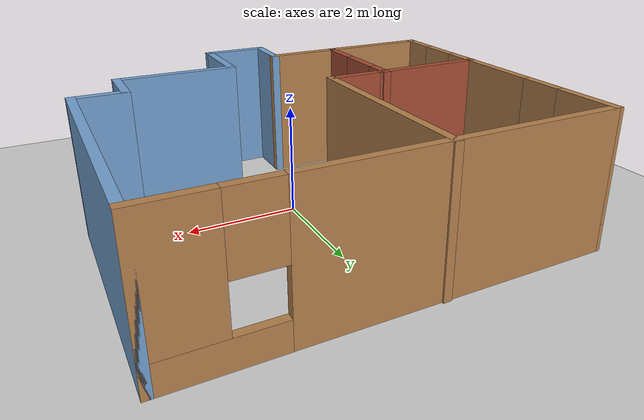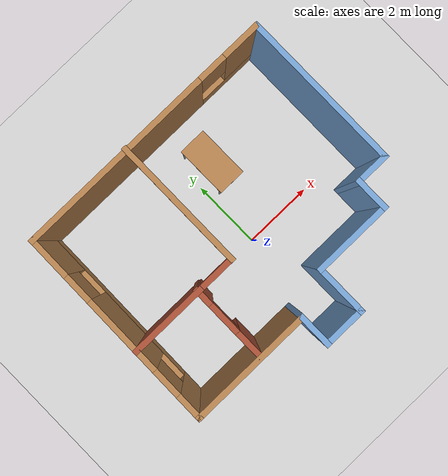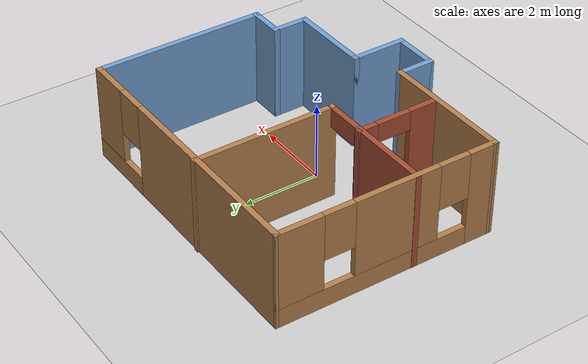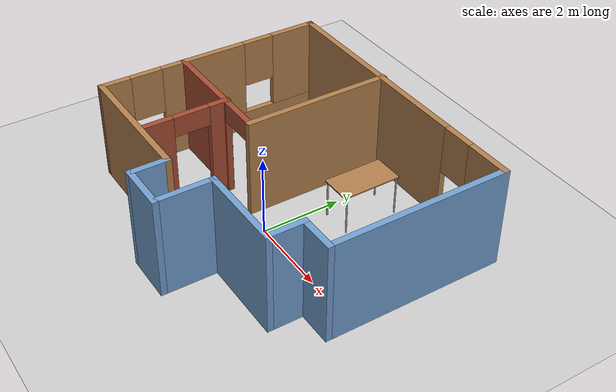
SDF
<sdf version="1.6">
 <world name="default">
  <light name="sun" type="directional">
   <pose>0 0 10 0 -0 0</pose>
   <diffuse>0.8 0.8 0.8 1</diffuse>
   <specular>0.2 0.2 0.2 1</specular>
   <attenuation>
    <range>1000</range>
    <constant>0.9</constant>
    <linear>0.01</linear>
    <quadratic>0.001</quadratic>
   </attenuation>
   <direction>-0.5 0.1 -0.9</direction>
  </light>
  <model name="ground_plane">
   <static>1</static>
   <link name="link">
    <collision name="collision">
     <geometry><plane><normal>0 0 1</normal><size>100 100</size></plane></geometry>
     <surface><friction><ode><mu>100</mu><mu2>50</mu2></ode></friction></surface>
    </collision>
    <visual name="visual">
     <cast_shadows>0</cast_shadows>
     <geometry><plane><normal>0 0 1</normal><size>100 100</size></plane></geometry>
     <material>
      <script><uri>file://media/materials/scripts/gazebo.material</uri><name>Gazebo/Grey</name></script>
     </material>
    </visual>
   </link>
  </model>
  <gravity>0 0 -9.8</gravity>
  <magnetic_field>6e-06 2.3e-05 -4.2e-05</magnetic_field>
  <atmosphere type="adiabatic"/>
  <physics name="default_physics" default="0" type="ode">
   <max_step_size>0.001</max_step_size>
   <real_time_factor>1</real_time_factor>
   <real_time_update_rate>1000</real_time_update_rate>
  </physics>
  <scene><ambient>0.4 0.4 0.4 1</ambient><background>0.7 0.7 0.7 1</background><shadows>1</shadows></scene>
  <audio><device>default</device></audio>
  <spherical_coordinates>
   <surface_model>EARTH_WGS84</surface_model>
   <latitude_deg>0</latitude_deg>
   <longitude_deg>0</longitude_deg>
   <elevation>0</elevation>
   <heading_deg>0</heading_deg>
  </spherical_coordinates>
  <model name="dice_apt">
   <pose>-0.179463 0.445694 0 0 -0 0</pose>
   <link name="Wall_0">
    <pose>0.025327 3.25899 0 0 -0 0</pose>
    <visual name="Wall_0_Visual_0">
     <pose>-0.970949 0 1.25 0 -0 0</pose>
     <geometry><box><size>5.5581 0.15 2.5</size></box></geometry>
     <material>
      <script><uri>file://media/materials/scripts/gazebo.material</uri><name>Gazebo/Wood</name></script>
      <ambient>1 1 1 1</ambient>
     </material>
     <meta><layer>0</layer></meta>
    </visual>
    <collision name="Wall_0_Collision_0">
     <geometry><box><size>5.5581 0.15 2.5</size></box></geometry>
     <pose>-0.970949 0 1.25 0 -0 0</pose>
    </collision>
    <visual name="Wall_0_Visual_1">
     <pose>2.77905 0 0.25 0 -0 0</pose>
     <geometry><box><size>1.9419 0.15 0.5</size></box></geometry>
     <material>
      <script><uri>file://media/materials/scripts/gazebo.material</uri><name>Gazebo/Wood</name></script>
      <ambient>1 1 1 1</ambient>
     </material>
     <meta><layer>0</layer></meta>
    </visual>
    <collision name="Wall_0_Collision_1">
     <geometry><box><size>1.9419 0.15 0.5</size></box></geometry>
     <pose>2.77905 0 0.25 0 -0 0</pose>
    </collision>
    <visual name="Wall_0_Visual_2">
     <pose>3.17905 0 1.5 0 -0 0</pose>
     <geometry><box><size>1.1419 0.15 2</size></box></geometry>
     <material>
      <script><uri>file://media/materials/scripts/gazebo.material</uri><name>Gazebo/Wood</name></script>
      <ambient>1 1 1 1</ambient>
     </material>
     <meta><layer>0</layer></meta>
    </visual>
    <collision name="Wall_0_Collision_2">
     <geometry><box><size>1.1419 0.15 2</size></box></geometry>
     <pose>3.17905 0 1.5 0 -0 0</pose>
    </collision>
    <visual name="Wall_0_Visual_3">
     <pose>2.2081 0 1.9 0 -0 0</pose>
     <geometry><box><size>0.8 0.15 1.2</size></box></geometry>
     <material>
      <script><uri>file://media/materials/scripts/gazebo.material</uri><name>Gazebo/Wood</name></script>
      <ambient>1 1 1 1</ambient>
     </material>
     <meta><layer>0</layer></meta>
    </visual>
    <collision name="Wall_0_Collision_3">
     <geometry><box><size>0.8 0.15 1.2</size></box></geometry>
     <pose>2.2081 0 1.9 0 -0 0</pose>
    </collision>
   </link>
   <link name="Wall_1">
    <collision name="Wall_1_Collision">
     <geometry><box><size>4.5 0.15 2.5</size></box></geometry>
     <pose>0 0 1.25 0 -0 0</pose>
    </collision>
    <visual name="Wall_1_Visual">
     <pose>0 0 1.25 0 -0 0</pose>
     <geometry><box><size>4.5 0.15 2.5</size></box></geometry>
     <material>
      <script><uri>file://media/materials/scripts/gazebo.material</uri><name>Gazebo/Grey</name></script>
      <ambient>0.447059 0.623529 0.811765 1</ambient>
     </material>
     <meta><layer>0</layer></meta>
    </visual>
    <pose>3.70033 1.08399 0 0 -0 -1.5708</pose>
   </link>
   <link name="Wall_10">
    <collision name="Wall_10_Collision">
     <geometry><box><size>1 0.15 2.5</size></box></geometry>
     <pose>0 0 1.25 0 -0 0</pose>
    </collision>
    <visual name="Wall_10_Visual">
     <pose>0 0 1.25 0 -0 0</pose>
     <geometry><box><size>1 0.15 2.5</size></box></geometry>
     <material>
      <script><uri>file://media/materials/scripts/gazebo.material</uri><name>Gazebo/Grey</name></script>
      <ambient>0.447059 0.623529 0.811765 1</ambient>
     </material>
     <meta><layer>0</layer></meta>
    </visual>
    <pose>-0.349673 -2.86601 0 0 -0 1.5708</pose>
   </link>
   <link name="Wall_11">
    <collision name="Wall_11_Collision">
     <geometry><box><size>3.5 0.15 2.5</size></box></geometry>
     <pose>0 0 1.25 0 -0 0</pose>
    </collision>
    <visual name="Wall_11_Visual">
     <pose>0 0 1.25 0 -0 0</pose>
     <geometry><box><size>3.5 0.15 2.5</size></box></geometry>
     <material>
      <script><uri>file://media/materials/scripts/gazebo.material</uri><name>Gazebo/Wood</name></script>
      <ambient>1 1 1 1</ambient>
     </material>
     <meta><layer>0</layer></meta>
    </visual>
    <pose>-2.02467 -2.44101 0 0 -0 3.14159</pose>
   </link>
   <link name="Wall_12">
    <pose>-3.67467 0.408986 0 0 -0 1.56202</pose>
    <visual name="Wall_12_Visual_0">
     <pose>-2.53263 0 1.25 0 -0 0</pose>
     <geometry><box><size>0.784956 0.15 2.5</size></box></geometry>
     <material>
      <script><uri>file://media/materials/scripts/gazebo.material</uri><name>Gazebo/Wood</name></script>
      <ambient>1 1 1 1</ambient>
     </material>
     <meta><layer>0</layer></meta>
    </visual>
    <collision name="Wall_12_Collision_0">
     <geometry><box><size>0.784956 0.15 2.5</size></box></geometry>
     <pose>-2.53263 0 1.25 0 -0 0</pose>
    </collision>
    <visual name="Wall_12_Visual_1">
     <pose>0.392478 0 0.25 0 -0 0</pose>
     <geometry><box><size>5.06526 0.15 0.5</size></box></geometry>
     <material>
      <script><uri>file://media/materials/scripts/gazebo.material</uri><name>Gazebo/Wood</name></script>
      <ambient>1 1 1 1</ambient>
     </material>
     <meta><layer>0</layer></meta>
    </visual>
    <collision name="Wall_12_Collision_1">
     <geometry><box><size>5.06526 0.15 0.5</size></box></geometry>
     <pose>0.392478 0 0.25 0 -0 0</pose>
    </collision>
    <visual name="Wall_12_Visual_2">
     <pose>-0.223019 0 1.5 0 -0 0</pose>
     <geometry><box><size>2.23427 0.15 2</size></box></geometry>
     <material>
      <script><uri>file://media/materials/scripts/gazebo.material</uri><name>Gazebo/Wood</name></script>
      <ambient>1 1 1 1</ambient>
     </material>
     <meta><layer>0</layer></meta>
    </visual>
    <collision name="Wall_12_Collision_2">
     <geometry><box><size>2.23427 0.15 2</size></box></geometry>
     <pose>-0.223019 0 1.5 0 -0 0</pose>
    </collision>
    <visual name="Wall_12_Visual_3">
     <pose>2.30961 0 1.5 0 -0 0</pose>
     <geometry><box><size>1.23099 0.15 2</size></box></geometry>
     <material>
      <script><uri>file://media/materials/scripts/gazebo.material</uri><name>Gazebo/Wood</name></script>
      <ambient>1 1 1 1</ambient>
     </material>
     <meta><layer>0</layer></meta>
    </visual>
    <collision name="Wall_12_Collision_3">
     <geometry><box><size>1.23099 0.15 2</size></box></geometry>
     <pose>2.30961 0 1.5 0 -0 0</pose>
    </collision>
    <visual name="Wall_12_Visual_4">
     <pose>-1.74015 0 1.9 0 -0 0</pose>
     <geometry><box><size>0.8 0.15 1.2</size></box></geometry>
     <material>
      <script><uri>file://media/materials/scripts/gazebo.material</uri><name>Gazebo/Wood</name></script>
      <ambient>1 1 1 1</ambient>
     </material>
     <meta><layer>0</layer></meta>
    </visual>
    <collision name="Wall_12_Collision_4">
     <geometry><box><size>0.8 0.15 1.2</size></box></geometry>
     <pose>-1.74015 0 1.9 0 -0 0</pose>
    </collision>
    <visual name="Wall_12_Visual_5">
     <pose>1.29412 0 1.9 0 -0 0</pose>
     <geometry><box><size>0.8 0.15 1.2</size></box></geometry>
     <material>
      <script><uri>file://media/materials/scripts/gazebo.material</uri><name>Gazebo/Wood</name></script>
      <ambient>1 1 1 1</ambient>
     </material>
     <meta><layer>0</layer></meta>
    </visual>
    <collision name="Wall_12_Collision_5">
     <geometry><box><size>0.8 0.15 1.2</size></box></geometry>
     <pose>1.29412 0 1.9 0 -0 0</pose>
    </collision>
   </link>
   <link name="Wall_14">
    <pose>-2.13465 -0.308986 0 0 -0 0</pose>
    <visual name="Wall_14_Visual_0">
     <pose>-0.520959 0 1.25 0 -0 0</pose>
     <geometry><box><size>2.20808 0.15 2.5</size></box></geometry>
     <material>
      <script><uri>file://media/materials/scripts/gazebo.material</uri><name>Gazebo/Bricks</name></script>
      <ambient>1 1 1 1</ambient>
     </material>
     <meta><layer>0</layer></meta>
    </visual>
    <collision name="Wall_14_Collision_0">
     <geometry><box><size>2.20808 0.15 2.5</size></box></geometry>
     <pose>-0.520959 0 1.25 0 -0 0</pose>
    </collision>
    <visual name="Wall_14_Visual_1">
     <pose>1.55404 0 1.25 0 -0 0</pose>
     <geometry><box><size>0.141918 0.15 2.5</size></box></geometry>
     <material>
      <script><uri>file://media/materials/scripts/gazebo.material</uri><name>Gazebo/Bricks</name></script>
      <ambient>1 1 1 1</ambient>
     </material>
     <meta><layer>0</layer></meta>
    </visual>
    <collision name="Wall_14_Collision_1">
     <geometry><box><size>0.141918 0.15 2.5</size></box></geometry>
     <pose>1.55404 0 1.25 0 -0 0</pose>
    </collision>
    <visual name="Wall_14_Visual_2">
     <pose>1.03308 0 2.25 0 -0 0</pose>
     <geometry><box><size>0.9 0.15 0.5</size></box></geometry>
     <material>
      <script><uri>file://media/materials/scripts/gazebo.material</uri><name>Gazebo/Bricks</name></script>
      <ambient>1 1 1 1</ambient>
     </material>
     <meta><layer>0</layer></meta>
    </visual>
    <collision name="Wall_14_Collision_2">
     <geometry><box><size>0.9 0.15 0.5</size></box></geometry>
     <pose>1.03308 0 2.25 0 -0 0</pose>
    </collision>
   </link>
   <link name="Wall_15">
    <collision name="Wall_15_Collision">
     <geometry><box><size>3.75 0.15 2.5</size></box></geometry>
     <pose>0 0 1.25 0 -0 0</pose>
    </collision>
    <visual name="Wall_15_Visual">
     <pose>0 0 1.25 0 -0 0</pose>
     <geometry><box><size>3.75 0.15 2.5</size></box></geometry>
     <material>
      <script><uri>file://media/materials/scripts/gazebo.material</uri><name>Gazebo/Wood</name></script>
      <ambient>1 1 1 1</ambient>
     </material>
     <meta><layer>0</layer></meta>
    </visual>
    <pose>-0.584653 1.49101 0 0 -0 1.5708</pose>
   </link>
   <link name="Wall_17">
    <pose>-1.6834 -1.32636 0 0 -0 -1.5708</pose>
    <visual name="Wall_17_Visual_0">
     <pose>-0.853269 0 1.25 0 -0 0</pose>
     <geometry><box><size>0.543461 0.15 2.5</size></box></geometry>
     <material>
      <script><uri>file://media/materials/scripts/gazebo.material</uri><name>Gazebo/Bricks</name></script>
      <ambient>1 1 1 1</ambient>
     </material>
     <meta><layer>0</layer></meta>
    </visual>
    <collision name="Wall_17_Collision_0">
     <geometry><box><size>0.543461 0.15 2.5</size></box></geometry>
     <pose>-0.853269 0 1.25 0 -0 0</pose>
    </collision>
    <visual name="Wall_17_Visual_1">
     <pose>0.721731 0 1.25 0 -0 0</pose>
     <geometry><box><size>0.806539 0.15 2.5</size></box></geometry>
     <material>
      <script><uri>file://media/materials/scripts/gazebo.material</uri><name>Gazebo/Bricks</name></script>
      <ambient>1 1 1 1</ambient>
     </material>
     <meta><layer>0</layer></meta>
    </visual>
    <collision name="Wall_17_Collision_1">
     <geometry><box><size>0.806539 0.15 2.5</size></box></geometry>
     <pose>0.721731 0 1.25 0 -0 0</pose>
    </collision>
    <visual name="Wall_17_Visual_2">
     <pose>-0.131539 0 2.25 0 -0 0</pose>
     <geometry><box><size>0.9 0.15 0.5</size></box></geometry>
     <material>
      <script><uri>file://media/materials/scripts/gazebo.material</uri><name>Gazebo/Bricks</name></script>
      <ambient>1 1 1 1</ambient>
     </material>
     <meta><layer>0</layer></meta>
    </visual>
    <collision name="Wall_17_Collision_2">
     <geometry><box><size>0.9 0.15 0.5</size></box></geometry>
     <pose>-0.131539 0 2.25 0 -0 0</pose>
    </collision>
   </link>
   <link name="Wall_5">
    <collision name="Wall_5_Collision">
     <geometry><box><size>1 0.15 2.5</size></box></geometry>
     <pose>0 0 1.25 0 -0 0</pose>
    </collision>
    <visual name="Wall_5_Visual">
     <pose>0 0 1.25 0 -0 0</pose>
     <geometry><box><size>1 0.15 2.5</size></box></geometry>
     <material>
      <script><uri>file://media/materials/scripts/gazebo.material</uri><name>Gazebo/Grey</name></script>
      <ambient>0.447059 0.623529 0.811765 1</ambient>
     </material>
     <meta><layer>0</layer></meta>
    </visual>
    <pose>3.27533 -1.09101 0 0 -0 3.14159</pose>
   </link>
   <link name="Wall_6">
    <collision name="Wall_6_Collision">
     <geometry><box><size>1 0.15 2.5</size></box></geometry>
     <pose>0 0 1.25 0 -0 0</pose>
    </collision>
    <visual name="Wall_6_Visual">
     <pose>0 0 1.25 0 -0 0</pose>
     <geometry><box><size>1 0.15 2.5</size></box></geometry>
     <material>
      <script><uri>file://media/materials/scripts/gazebo.material</uri><name>Gazebo/Grey</name></script>
      <ambient>0.447059 0.623529 0.811765 1</ambient>
     </material>
     <meta><layer>0</layer></meta>
    </visual>
    <pose>2.85033 -1.51601 0 0 -0 -1.5708</pose>
   </link>
   <link name="Wall_7">
    <collision name="Wall_7_Collision">
     <geometry><box><size>2.25 0.15 2.5</size></box></geometry>
     <pose>0 0 1.25 0 -0 0</pose>
    </collision>
    <visual name="Wall_7_Visual">
     <pose>0 0 1.25 0 -0 0</pose>
     <geometry><box><size>2.25 0.15 2.5</size></box></geometry>
     <material>
      <script><uri>file://media/materials/scripts/gazebo.material</uri><name>Gazebo/Grey</name></script>
      <ambient>0.447059 0.623529 0.811765 1</ambient>
     </material>
     <meta><layer>0</layer></meta>
    </visual>
    <pose>1.80033 -1.94101 0 0 -0 3.14159</pose>
   </link>
   <link name="Wall_8">
    <collision name="Wall_8_Collision">
     <geometry><box><size>1.5 0.15 2.5</size></box></geometry>
     <pose>0 0 1.25 0 -0 0</pose>
    </collision>
    <visual name="Wall_8_Visual">
     <pose>0 0 1.25 0 -0 0</pose>
     <geometry><box><size>1.5 0.15 2.5</size></box></geometry>
     <material>
      <script><uri>file://media/materials/scripts/gazebo.material</uri><name>Gazebo/Grey</name></script>
      <ambient>0.447059 0.623529 0.811765 1</ambient>
     </material>
     <meta><layer>0</layer></meta>
    </visual>
    <pose>0.750327 -2.61601 0 0 -0 -1.5708</pose>
   </link>
   <link name="Wall_9">
    <collision name="Wall_9_Collision">
     <geometry><box><size>1.25 0.15 2.5</size></box></geometry>
     <pose>0 0 1.25 0 -0 0</pose>
    </collision>
    <visual name="Wall_9_Visual">
     <pose>0 0 1.25 0 -0 0</pose>
     <geometry><box><size>1.25 0.15 2.5</size></box></geometry>
     <material>
      <script><uri>file://media/materials/scripts/gazebo.material</uri><name>Gazebo/Grey</name></script>
      <ambient>0.447059 0.623529 0.811765 1</ambient>
     </material>
     <meta><layer>0</layer></meta>
    </visual>
    <pose>0.200327 -3.29101 0 0 -0 3.14159</pose>
   </link>
   <static>1</static>
  </model>
  <model name="table">
   <static>1</static>
   <link name="link">
    <collision name="surface">
     <pose>0 0 1 0 -0 0</pose>
     <geometry><box><size>1.5 0.8 0.03</size></box></geometry>
     <surface><friction><ode><mu>0.6</mu><mu2>0.6</mu2></ode></friction></surface>
    </collision>
    <visual name="visual1">
     <pose>0 0 1 0 -0 0</pose>
     <geometry><box><size>1.5 0.8 0.03</size></box></geometry>
     <material>
      <script><uri>file://media/materials/scripts/gazebo.material</uri><name>Gazebo/Wood</name></script>
     </material>
    </visual>
    <collision name="front_left_leg">
     <pose>0.68 0.38 0.5 0 -0 0</pose>
     <geometry><cylinder><radius>0.02</radius><length>1</length></cylinder></geometry>
    </collision>
    <visual name="front_left_leg">
     <pose>0.68 0.38 0.5 0 -0 0</pose>
     <geometry><cylinder><radius>0.02</radius><length>1</length></cylinder></geometry>
     <material>
      <script><uri>file://media/materials/scripts/gazebo.material</uri><name>Gazebo/Grey</name></script>
     </material>
    </visual>
    <collision name="front_right_leg">
     <pose>0.68 -0.38 0.5 0 -0 0</pose>
     <geometry><cylinder><radius>0.02</radius><length>1</length></cylinder></geometry>
    </collision>
    <visual name="front_right_leg">
     <pose>0.68 -0.38 0.5 0 -0 0</pose>
     <geometry><cylinder><radius>0.02</radius><length>1</length></cylinder></geometry>
     <material>
      <script><uri>file://media/materials/scripts/gazebo.material</uri><name>Gazebo/Grey</name></script>
     </material>
    </visual>
    <collision name="back_right_leg">
     <pose>-0.68 -0.38 0.5 0 -0 0</pose>
     <geometry><cylinder><radius>0.02</radius><length>1</length></cylinder></geometry>
    </collision>
    <visual name="back_right_leg">
     <pose>-0.68 -0.38 0.5 0 -0 0</pose>
     <geometry><cylinder><radius>0.02</radius><length>1</length></cylinder></geometry>
     <material>
      <script><uri>file://media/materials/scripts/gazebo.material</uri><name>Gazebo/Grey</name></script>
     </material>
    </visual>
    <collision name="back_left_leg">
     <pose>-0.68 0.38 0.5 0 -0 0</pose>
     <geometry><cylinder><radius>0.02</radius><length>1</length></cylinder></geometry>
    </collision>
    <visual name="back_left_leg">
     <pose>-0.68 0.38 0.5 0 -0 0</pose>
     <geometry><cylinder><radius>0.02</radius><length>1</length></cylinder></geometry>
     <material>
      <script><uri>file://media/materials/scripts/gazebo.material</uri><name>Gazebo/Grey</name></script>
     </material>
    </visual>
   </link>
   <pose>0.635447 2.23016 0 0 0 -1.56763</pose>
  </model>
 </world>
</sdf>
